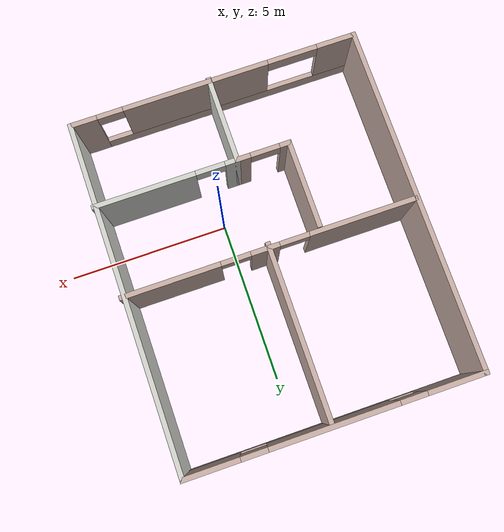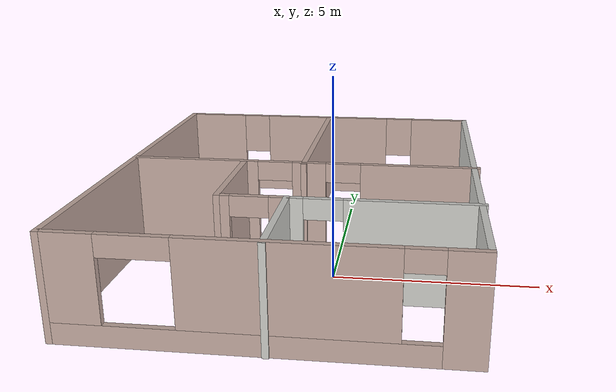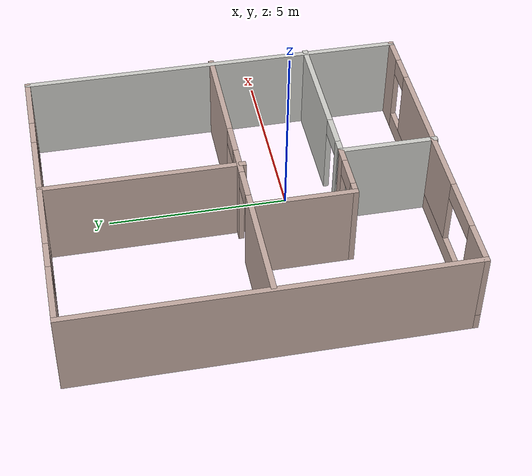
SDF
<?xml version='1.0'?>
<sdf version='1.6'>
  <model name='2ndfloor'>
    <pose frame=''>-0.984635 1.44931 0 0 -0 0</pose>
    <link name='Wall_0'>
      <collision name='Wall_0_Collision'>
        <geometry>
          <box>
            <size>10.75 0.15 2.5</size>
          </box>
        </geometry>
        <pose frame=''>0 0 1.25 0 -0 0</pose>
      </collision>
      <visual name='Wall_0_Visual'>
        <pose frame=''>0 0 1.25 0 -0 0</pose>
        <geometry>
          <box>
            <size>10.75 0.15 2.5</size>
          </box>
        </geometry>
        <material>
          <script>
            <uri>file://media/materials/scripts/gazebo.material</uri>
            <name>Gazebo/Grey</name>
          </script>
          <ambient>0.760784 0.662745 0.627451 1</ambient>
        </material>
        <meta>
          <layer>0</layer>
        </meta>
      </visual>
      <pose frame=''>-4.46537 0.020694 0 0 -0 1.5708</pose>
    </link>
    <link name='Wall_1'>
      <pose frame=''>-0.040365 5.32069 0 0 -0 0</pose>
      <visual name='Wall_1_Visual_0'>
        <pose frame=''>-3.59416 0 1.25 0 -0 0</pose>
        <geometry>
          <box>
            <size>1.81167 0.15 2.5</size>
          </box>
        </geometry>
        <material>
          <script>
            <uri>file://media/materials/scripts/gazebo.material</uri>
            <name>Gazebo/Grey</name>
          </script>
          <ambient>0.760784 0.662745 0.627451 1</ambient>
        </material>
        <meta>
          <layer>0</layer>
        </meta>
      </visual>
      <collision name='Wall_1_Collision_0'>
        <geometry>
          <box>
            <size>1.81167 0.15 2.5</size>
          </box>
        </geometry>
        <pose frame=''>-3.59416 0 1.25 0 -0 0</pose>
      </collision>
      <visual name='Wall_1_Visual_1'>
        <pose frame=''>0.905836 0 0.25 0 -0 0</pose>
        <geometry>
          <box>
            <size>7.18833 0.15 0.5</size>
          </box>
        </geometry>
        <material>
          <script>
            <uri>file://media/materials/scripts/gazebo.material</uri>
            <name>Gazebo/Grey</name>
          </script>
          <ambient>0.760784 0.662745 0.627451 1</ambient>
        </material>
        <meta>
          <layer>0</layer>
        </meta>
      </visual>
      <collision name='Wall_1_Collision_1'>
        <geometry>
          <box>
            <size>7.18833 0.15 0.5</size>
          </box>
        </geometry>
        <pose frame=''>0.905836 0 0.25 0 -0 0</pose>
      </collision>
      <visual name='Wall_1_Visual_2'>
        <pose frame=''>0.03653 0 1.5 0 -0 0</pose>
        <geometry>
          <box>
            <size>3.84972 0.15 2</size>
          </box>
        </geometry>
        <material>
          <script>
            <uri>file://media/materials/scripts/gazebo.material</uri>
            <name>Gazebo/Grey</name>
          </script>
          <ambient>0.760784 0.662745 0.627451 1</ambient>
        </material>
        <meta>
          <layer>0</layer>
        </meta>
      </visual>
      <collision name='Wall_1_Collision_2'>
        <geometry>
          <box>
            <size>3.84972 0.15 2</size>
          </box>
        </geometry>
        <pose frame=''>0.03653 0 1.5 0 -0 0</pose>
      </collision>
      <visual name='Wall_1_Visual_3'>
        <pose frame=''>3.63069 0 1.5 0 -0 0</pose>
        <geometry>
          <box>
            <size>1.73861 0.15 2</size>
          </box>
        </geometry>
        <material>
          <script>
            <uri>file://media/materials/scripts/gazebo.material</uri>
            <name>Gazebo/Grey</name>
          </script>
          <ambient>0.760784 0.662745 0.627451 1</ambient>
        </material>
        <meta>
          <layer>0</layer>
        </meta>
      </visual>
      <collision name='Wall_1_Collision_3'>
        <geometry>
          <box>
            <size>1.73861 0.15 2</size>
          </box>
        </geometry>
        <pose frame=''>3.63069 0 1.5 0 -0 0</pose>
      </collision>
      <visual name='Wall_1_Visual_4'>
        <pose frame=''>-2.28833 0 1.9 0 -0 0</pose>
        <geometry>
          <box>
            <size>0.8 0.15 1.2</size>
          </box>
        </geometry>
        <material>
          <script>
            <uri>file://media/materials/scripts/gazebo.material</uri>
            <name>Gazebo/Grey</name>
          </script>
          <ambient>0.760784 0.662745 0.627451 1</ambient>
        </material>
        <meta>
          <layer>0</layer>
        </meta>
      </visual>
      <collision name='Wall_1_Collision_4'>
        <geometry>
          <box>
            <size>0.8 0.15 1.2</size>
          </box>
        </geometry>
        <pose frame=''>-2.28833 0 1.9 0 -0 0</pose>
      </collision>
      <visual name='Wall_1_Visual_5'>
        <pose frame=''>2.36139 0 1.9 0 -0 0</pose>
        <geometry>
          <box>
            <size>0.8 0.15 1.2</size>
          </box>
        </geometry>
        <material>
          <script>
            <uri>file://media/materials/scripts/gazebo.material</uri>
            <name>Gazebo/Grey</name>
          </script>
          <ambient>0.760784 0.662745 0.627451 1</ambient>
        </material>
        <meta>
          <layer>0</layer>
        </meta>
      </visual>
      <collision name='Wall_1_Collision_5'>
        <geometry>
          <box>
            <size>0.8 0.15 1.2</size>
          </box>
        </geometry>
        <pose frame=''>2.36139 0 1.9 0 -0 0</pose>
      </collision>
    </link>
    <link name='Wall_10'>
      <collision name='Wall_10_Collision'>
        <geometry>
          <box>
            <size>2.75 0.15 2.5</size>
          </box>
        </geometry>
        <pose frame=''>0 0 1.25 0 -0 0</pose>
      </collision>
      <visual name='Wall_10_Visual'>
        <pose frame=''>0 0 1.25 0 -0 0</pose>
        <geometry>
          <box>
            <size>2.75 0.15 2.5</size>
          </box>
        </geometry>
        <material>
          <script>
            <uri>file://media/materials/scripts/gazebo.material</uri>
            <name>Gazebo/CeilingTiled</name>
          </script>
          <ambient>0.760784 0.662745 0.627451 1</ambient>
        </material>
        <meta>
          <layer>0</layer>
        </meta>
      </visual>
      <pose frame=''>0.087936 -4.02069 0 0 -0 1.5708</pose>
    </link>
    <link name='Wall_11'>
      <pose frame=''>2.26294 -2.72069 0 0 -0 0</pose>
      <visual name='Wall_11_Visual_0'>
        <pose frame=''>-2.02453 0 1.25 0 -0 0</pose>
        <geometry>
          <box>
            <size>0.450936 0.15 2.5</size>
          </box>
        </geometry>
        <material>
          <script>
            <uri>file://media/materials/scripts/gazebo.material</uri>
            <name>Gazebo/CeilingTiled</name>
          </script>
          <ambient>0.760784 0.662745 0.627451 1</ambient>
        </material>
        <meta>
          <layer>0</layer>
        </meta>
      </visual>
      <collision name='Wall_11_Collision_0'>
        <geometry>
          <box>
            <size>0.450936 0.15 2.5</size>
          </box>
        </geometry>
        <pose frame=''>-2.02453 0 1.25 0 -0 0</pose>
      </collision>
      <visual name='Wall_11_Visual_1'>
        <pose frame=''>0.675468 0 1.25 0 -0 0</pose>
        <geometry>
          <box>
            <size>3.14906 0.15 2.5</size>
          </box>
        </geometry>
        <material>
          <script>
            <uri>file://media/materials/scripts/gazebo.material</uri>
            <name>Gazebo/CeilingTiled</name>
          </script>
          <ambient>0.760784 0.662745 0.627451 1</ambient>
        </material>
        <meta>
          <layer>0</layer>
        </meta>
      </visual>
      <collision name='Wall_11_Collision_1'>
        <geometry>
          <box>
            <size>3.14906 0.15 2.5</size>
          </box>
        </geometry>
        <pose frame=''>0.675468 0 1.25 0 -0 0</pose>
      </collision>
      <visual name='Wall_11_Visual_2'>
        <pose frame=''>-1.34906 0 2.25 0 -0 0</pose>
        <geometry>
          <box>
            <size>0.9 0.15 0.5</size>
          </box>
        </geometry>
        <material>
          <script>
            <uri>file://media/materials/scripts/gazebo.material</uri>
            <name>Gazebo/CeilingTiled</name>
          </script>
          <ambient>0.760784 0.662745 0.627451 1</ambient>
        </material>
        <meta>
          <layer>0</layer>
        </meta>
      </visual>
      <collision name='Wall_11_Collision_2'>
        <geometry>
          <box>
            <size>0.9 0.15 0.5</size>
          </box>
        </geometry>
        <pose frame=''>-1.34906 0 2.25 0 -0 0</pose>
      </collision>
    </link>
    <link name='Wall_13'>
      <pose frame=''>-0.712064 -2.72069 0 0 -0 3.14159</pose>
      <visual name='Wall_13_Visual_0'>
        <pose frame=''>-0.634237 0 1.25 0 -0 0</pose>
        <geometry>
          <box>
            <size>0.481526 0.15 2.5</size>
          </box>
        </geometry>
        <material>
          <script>
            <uri>file://media/materials/scripts/gazebo.material</uri>
            <name>Gazebo/Grey</name>
          </script>
          <ambient>0.760784 0.662745 0.627451 1</ambient>
        </material>
        <meta>
          <layer>0</layer>
        </meta>
      </visual>
      <collision name='Wall_13_Collision_0'>
        <geometry>
          <box>
            <size>0.481526 0.15 2.5</size>
          </box>
        </geometry>
        <pose frame=''>-0.634237 0 1.25 0 -0 0</pose>
      </collision>
      <visual name='Wall_13_Visual_1'>
        <pose frame=''>0.690763 0 1.25 0 -0 0</pose>
        <geometry>
          <box>
            <size>0.368474 0.15 2.5</size>
          </box>
        </geometry>
        <material>
          <script>
            <uri>file://media/materials/scripts/gazebo.material</uri>
            <name>Gazebo/Grey</name>
          </script>
          <ambient>0.760784 0.662745 0.627451 1</ambient>
        </material>
        <meta>
          <layer>0</layer>
        </meta>
      </visual>
      <collision name='Wall_13_Collision_1'>
        <geometry>
          <box>
            <size>0.368474 0.15 2.5</size>
          </box>
        </geometry>
        <pose frame=''>0.690763 0 1.25 0 -0 0</pose>
      </collision>
      <visual name='Wall_13_Visual_2'>
        <pose frame=''>0.056526 0 2.25 0 -0 0</pose>
        <geometry>
          <box>
            <size>0.9 0.15 0.5</size>
          </box>
        </geometry>
        <material>
          <script>
            <uri>file://media/materials/scripts/gazebo.material</uri>
            <name>Gazebo/Grey</name>
          </script>
          <ambient>0.760784 0.662745 0.627451 1</ambient>
        </material>
        <meta>
          <layer>0</layer>
        </meta>
      </visual>
      <collision name='Wall_13_Collision_2'>
        <geometry>
          <box>
            <size>0.9 0.15 0.5</size>
          </box>
        </geometry>
        <pose frame=''>0.056526 0 2.25 0 -0 0</pose>
      </collision>
    </link>
    <link name='Wall_14'>
      <collision name='Wall_14_Collision'>
        <geometry>
          <box>
            <size>2.75 0.15 2.5</size>
          </box>
        </geometry>
        <pose frame=''>0 0 1.25 0 -0 0</pose>
      </collision>
      <visual name='Wall_14_Visual'>
        <pose frame=''>0 0 1.25 0 -0 0</pose>
        <geometry>
          <box>
            <size>2.75 0.15 2.5</size>
          </box>
        </geometry>
        <material>
          <script>
            <uri>file://media/materials/scripts/gazebo.material</uri>
            <name>Gazebo/Grey</name>
          </script>
          <ambient>0.760784 0.662745 0.627451 1</ambient>
        </material>
        <meta>
          <layer>0</layer>
        </meta>
      </visual>
      <pose frame=''>-1.51206 -1.42069 0 0 -0 1.5708</pose>
    </link>
    <link name='Wall_2'>
      <collision name='Wall_2_Collision'>
        <geometry>
          <box>
            <size>10.75 0.15 2.5</size>
          </box>
        </geometry>
        <pose frame=''>0 0 1.25 0 -0 0</pose>
      </collision>
      <visual name='Wall_2_Visual'>
        <pose frame=''>0 0 1.25 0 -0 0</pose>
        <geometry>
          <box>
            <size>10.75 0.15 2.5</size>
          </box>
        </geometry>
        <material>
          <script>
            <uri>file://media/materials/scripts/gazebo.material</uri>
            <name>Gazebo/CeilingTiled</name>
          </script>
          <ambient>0.760784 0.662745 0.627451 1</ambient>
        </material>
        <meta>
          <layer>0</layer>
        </meta>
      </visual>
      <pose frame=''>4.38464 0.020694 0 0 0 -1.5708</pose>
    </link>
    <link name='Wall_3'>
      <pose frame=''>-0.040365 -5.27931 0 0 -0 3.14159</pose>
      <visual name='Wall_3_Visual_0'>
        <pose frame=''>-4.05896 0 1.25 0 -0 0</pose>
        <geometry>
          <box>
            <size>0.882086 0.15 2.5</size>
          </box>
        </geometry>
        <material>
          <script>
            <uri>file://media/materials/scripts/gazebo.material</uri>
            <name>Gazebo/Grey</name>
          </script>
          <ambient>0.760784 0.662745 0.627451 1</ambient>
        </material>
        <meta>
          <layer>0</layer>
        </meta>
      </visual>
      <collision name='Wall_3_Collision_0'>
        <geometry>
          <box>
            <size>0.882086 0.15 2.5</size>
          </box>
        </geometry>
        <pose frame=''>-4.05896 0 1.25 0 -0 0</pose>
      </collision>
      <visual name='Wall_3_Visual_1'>
        <pose frame=''>0.441043 0 0.25 0 -0 0</pose>
        <geometry>
          <box>
            <size>8.11791 0.15 0.5</size>
          </box>
        </geometry>
        <material>
          <script>
            <uri>file://media/materials/scripts/gazebo.material</uri>
            <name>Gazebo/Grey</name>
          </script>
          <ambient>0.760784 0.662745 0.627451 1</ambient>
        </material>
        <meta>
          <layer>0</layer>
        </meta>
      </visual>
      <collision name='Wall_3_Collision_1'>
        <geometry>
          <box>
            <size>8.11791 0.15 0.5</size>
          </box>
        </geometry>
        <pose frame=''>0.441043 0 0.25 0 -0 0</pose>
      </collision>
      <visual name='Wall_3_Visual_2'>
        <pose frame=''>-0.560523 0 1.5 0 -0 0</pose>
        <geometry>
          <box>
            <size>4.51478 0.15 2</size>
          </box>
        </geometry>
        <material>
          <script>
            <uri>file://media/materials/scripts/gazebo.material</uri>
            <name>Gazebo/Grey</name>
          </script>
          <ambient>0.760784 0.662745 0.627451 1</ambient>
        </material>
        <meta>
          <layer>0</layer>
        </meta>
      </visual>
      <collision name='Wall_3_Collision_2'>
        <geometry>
          <box>
            <size>4.51478 0.15 2</size>
          </box>
        </geometry>
        <pose frame=''>-0.560523 0 1.5 0 -0 0</pose>
      </collision>
      <visual name='Wall_3_Visual_3'>
        <pose frame=''>3.87343 0 1.5 0 -0 0</pose>
        <geometry>
          <box>
            <size>1.25313 0.15 2</size>
          </box>
        </geometry>
        <material>
          <script>
            <uri>file://media/materials/scripts/gazebo.material</uri>
            <name>Gazebo/Grey</name>
          </script>
          <ambient>0.760784 0.662745 0.627451 1</ambient>
        </material>
        <meta>
          <layer>0</layer>
        </meta>
      </visual>
      <collision name='Wall_3_Collision_3'>
        <geometry>
          <box>
            <size>1.25313 0.15 2</size>
          </box>
        </geometry>
        <pose frame=''>3.87343 0 1.5 0 -0 0</pose>
      </collision>
      <visual name='Wall_3_Visual_4'>
        <pose frame=''>-3.21791 0 2.25 0 -0 0</pose>
        <geometry>
          <box>
            <size>0.8 0.15 0.5</size>
          </box>
        </geometry>
        <material>
          <script>
            <uri>file://media/materials/scripts/gazebo.material</uri>
            <name>Gazebo/Grey</name>
          </script>
          <ambient>0.760784 0.662745 0.627451 1</ambient>
        </material>
        <meta>
          <layer>0</layer>
        </meta>
      </visual>
      <collision name='Wall_3_Collision_4'>
        <geometry>
          <box>
            <size>0.8 0.15 0.5</size>
          </box>
        </geometry>
        <pose frame=''>-3.21791 0 2.25 0 -0 0</pose>
      </collision>
      <visual name='Wall_3_Visual_5'>
        <pose frame=''>2.47187 0 2.25 0 -0 0</pose>
        <geometry>
          <box>
            <size>1.55 0.15 0.5</size>
          </box>
        </geometry>
        <material>
          <script>
            <uri>file://media/materials/scripts/gazebo.material</uri>
            <name>Gazebo/Grey</name>
          </script>
          <ambient>0.760784 0.662745 0.627451 1</ambient>
        </material>
        <meta>
          <layer>0</layer>
        </meta>
      </visual>
      <collision name='Wall_3_Collision_5'>
        <geometry>
          <box>
            <size>1.55 0.15 0.5</size>
          </box>
        </geometry>
        <pose frame=''>2.47187 0 2.25 0 -0 0</pose>
      </collision>
    </link>
    <link name='Wall_6'>
      <pose frame=''>0.040365 0.044093 0 0 -0 0</pose>
      <visual name='Wall_6_Visual_0'>
        <pose frame=''>-2.84889 0 1.25 0 -0 0</pose>
        <geometry>
          <box>
            <size>3.30222 0.15 2.5</size>
          </box>
        </geometry>
        <material>
          <script>
            <uri>file://media/materials/scripts/gazebo.material</uri>
            <name>Gazebo/Grey</name>
          </script>
          <ambient>0.760784 0.662745 0.627451 1</ambient>
        </material>
        <meta>
          <layer>0</layer>
        </meta>
      </visual>
      <collision name='Wall_6_Collision_0'>
        <geometry>
          <box>
            <size>3.30222 0.15 2.5</size>
          </box>
        </geometry>
        <pose frame=''>-2.84889 0 1.25 0 -0 0</pose>
      </collision>
      <visual name='Wall_6_Visual_1'>
        <pose frame=''>0.139341 0 1.25 0 -0 0</pose>
        <geometry>
          <box>
            <size>0.874233 0.15 2.5</size>
          </box>
        </geometry>
        <material>
          <script>
            <uri>file://media/materials/scripts/gazebo.material</uri>
            <name>Gazebo/Grey</name>
          </script>
          <ambient>0.760784 0.662745 0.627451 1</ambient>
        </material>
        <meta>
          <layer>0</layer>
        </meta>
      </visual>
      <collision name='Wall_6_Collision_1'>
        <geometry>
          <box>
            <size>0.874233 0.15 2.5</size>
          </box>
        </geometry>
        <pose frame=''>0.139341 0 1.25 0 -0 0</pose>
      </collision>
      <visual name='Wall_6_Visual_2'>
        <pose frame=''>2.98823 0 1.25 0 -0 0</pose>
        <geometry>
          <box>
            <size>3.02354 0.15 2.5</size>
          </box>
        </geometry>
        <material>
          <script>
            <uri>file://media/materials/scripts/gazebo.material</uri>
            <name>Gazebo/Grey</name>
          </script>
          <ambient>0.760784 0.662745 0.627451 1</ambient>
        </material>
        <meta>
          <layer>0</layer>
        </meta>
      </visual>
      <collision name='Wall_6_Collision_2'>
        <geometry>
          <box>
            <size>3.02354 0.15 2.5</size>
          </box>
        </geometry>
        <pose frame=''>2.98823 0 1.25 0 -0 0</pose>
      </collision>
      <visual name='Wall_6_Visual_3'>
        <pose frame=''>-0.747775 0 2.25 0 -0 0</pose>
        <geometry>
          <box>
            <size>0.9 0.15 0.5</size>
          </box>
        </geometry>
        <material>
          <script>
            <uri>file://media/materials/scripts/gazebo.material</uri>
            <name>Gazebo/Grey</name>
          </script>
          <ambient>0.760784 0.662745 0.627451 1</ambient>
        </material>
        <meta>
          <layer>0</layer>
        </meta>
      </visual>
      <collision name='Wall_6_Collision_3'>
        <geometry>
          <box>
            <size>0.9 0.15 0.5</size>
          </box>
        </geometry>
        <pose frame=''>-0.747775 0 2.25 0 -0 0</pose>
      </collision>
      <visual name='Wall_6_Visual_4'>
        <pose frame=''>1.02646 0 2.25 0 -0 0</pose>
        <geometry>
          <box>
            <size>0.9 0.15 0.5</size>
          </box>
        </geometry>
        <material>
          <script>
            <uri>file://media/materials/scripts/gazebo.material</uri>
            <name>Gazebo/Grey</name>
          </script>
          <ambient>0.760784 0.662745 0.627451 1</ambient>
        </material>
        <meta>
          <layer>0</layer>
        </meta>
      </visual>
      <collision name='Wall_6_Collision_4'>
        <geometry>
          <box>
            <size>0.9 0.15 0.5</size>
          </box>
        </geometry>
        <pose frame=''>1.02646 0 2.25 0 -0 0</pose>
      </collision>
    </link>
    <link name='Wall_8'>
      <collision name='Wall_8_Collision'>
        <geometry>
          <box>
            <size>5.5 0.15 2.5</size>
          </box>
        </geometry>
        <pose frame=''>0 0 1.25 0 -0 0</pose>
      </collision>
      <visual name='Wall_8_Visual'>
        <pose frame=''>0 0 1.25 0 -0 0</pose>
        <geometry>
          <box>
            <size>5.5 0.15 2.5</size>
          </box>
        </geometry>
        <material>
          <script>
            <uri>file://media/materials/scripts/gazebo.material</uri>
            <name>Gazebo/Grey</name>
          </script>
          <ambient>0.760784 0.662745 0.627451 1</ambient>
        </material>
        <meta>
          <layer>0</layer>
        </meta>
      </visual>
      <pose frame=''>0.057346 2.61911 0 0 0 -1.5708</pose>
    </link>
    <static>1</static>
  </model>
</sdf>
